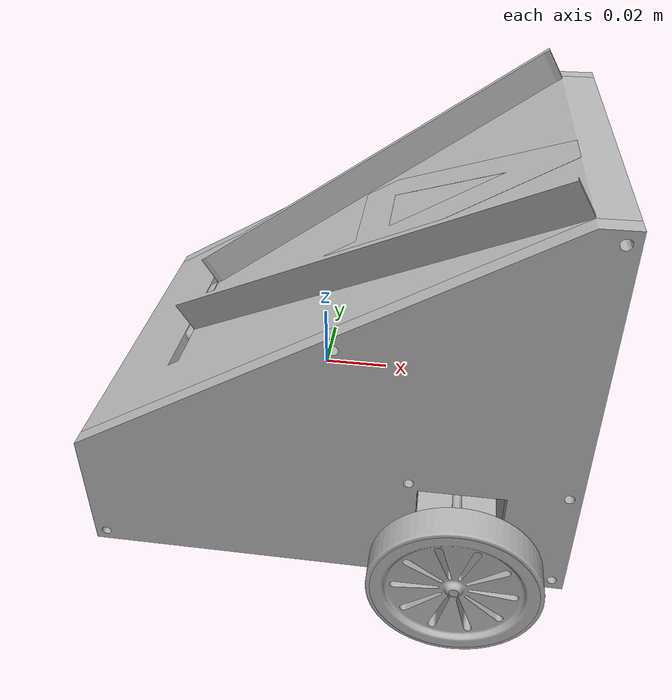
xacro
<?xml version="1.0" ?>
<robot name="grid_bot_4" xmlns:xacro="http://www.ros.org/wiki/xacro">

<xacro:include filename="$(find grid_bot_4_description)/urdf/materials.xacro" />
<xacro:include filename="$(find grid_bot_4_description)/urdf/grid_bot_4.trans" />
<xacro:include filename="$(find grid_bot_4_description)/urdf/grid_bot_4.gazebo" />
<link name="base_link">
  <visual>
    <origin rpy="0 0 0" xyz="0 0 0"/>
    <geometry>
      <mesh filename="package://grid_bot_4_description/meshes/base_link.stl" scale="0.001 0.001 0.001"/>
    </geometry>
    <material name="silver"/>
  </visual>
  <collision>
    <origin rpy="0 0 0" xyz="0 0 0"/>
    <geometry>
      <mesh filename="package://grid_bot_4_description/meshes/base_link.stl" scale="0.001 0.001 0.001"/>
    </geometry>
  </collision>
</link>

<link name="servo_motor_1">
  <inertial>
    <origin rpy="0 0 0" xyz="0.010587734438734408 0.0084001186327211 0.006274355737184533"/>
    <mass value="0.05328666830943237"/>
    <inertia ixx="4e-06" ixy="-0.0" ixz="-1e-06" iyy="3e-06" iyz="-0.0" izz="5e-06"/>
  </inertial>
  <visual>
    <origin rpy="0 0 0" xyz="0.031681 -0.002315 -0.005433"/>
    <geometry>
      <mesh filename="package://grid_bot_4_description/meshes/servo_motor_1.stl" scale="0.001 0.001 0.001"/>
    </geometry>
    <material name="silver"/>
  </visual>
  <collision>
    <origin rpy="0 0 0" xyz="0.031681 -0.002315 -0.005433"/>
    <geometry>
      <mesh filename="package://grid_bot_4_description/meshes/servo_motor_1.stl" scale="0.001 0.001 0.001"/>
    </geometry>
  </collision>
</link>

<link name="servo_actuator_1">
  <inertial>
    <origin rpy="0 0 0" xyz="0.004722447291877686 4.322909012404591e-07 -0.005026760619318825"/>
    <mass value="0.034970185716492505"/>
    <inertia ixx="7e-06" ixy="0.0" ixz="2e-06" iyy="5e-06" iyz="0.0" izz="5e-06"/>
  </inertial>
  <visual>
    <origin rpy="0 0 0" xyz="0.035552 -0.002315 -0.003139"/>
    <geometry>
      <mesh filename="package://grid_bot_4_description/meshes/servo_actuator_1.stl" scale="0.001 0.001 0.001"/>
    </geometry>
    <material name="silver"/>
  </visual>
  <collision>
    <origin rpy="0 0 0" xyz="0.035552 -0.002315 -0.003139"/>
    <geometry>
      <mesh filename="package://grid_bot_4_description/meshes/servo_actuator_1.stl" scale="0.001 0.001 0.001"/>
    </geometry>
  </collision>
</link>

<link name="side_pane_2">
  <inertial>
    <origin rpy="0 0 0" xyz="-0.05840087932305019 -0.0024995677090986004 -0.07001406727133204"/>
    <mass value="0.441860348592679"/>
    <inertia ixx="0.000382" ixy="0.0" ixz="-0.000236" iyy="0.001103" iyz="-0.0" izz="0.000722"/>
  </inertial>
  <visual>
    <origin rpy="0 0 0" xyz="-0.075503 0.047685 -0.079034"/>
    <geometry>
      <mesh filename="package://grid_bot_4_description/meshes/side_pane_2.stl" scale="0.001 0.001 0.001"/>
    </geometry>
    <material name="silver"/>
  </visual>
  <collision>
    <origin rpy="0 0 0" xyz="-0.075503 0.047685 -0.079034"/>
    <geometry>
      <mesh filename="package://grid_bot_4_description/meshes/side_pane_2.stl" scale="0.001 0.001 0.001"/>
    </geometry>
  </collision>
</link>

<link name="side_pane_1">
  <inertial>
    <origin rpy="0 0 0" xyz="-0.05840087932305031 0.0025004322909012236 -0.07001406727133201"/>
    <mass value="0.441860348592679"/>
    <inertia ixx="0.000382" ixy="0.0" ixz="-0.000236" iyy="0.001103" iyz="-0.0" izz="0.000722"/>
  </inertial>
  <visual>
    <origin rpy="0 0 0" xyz="-0.075503 -0.052315 -0.079034"/>
    <geometry>
      <mesh filename="package://grid_bot_4_description/meshes/side_pane_1.stl" scale="0.001 0.001 0.001"/>
    </geometry>
    <material name="silver"/>
  </visual>
  <collision>
    <origin rpy="0 0 0" xyz="-0.075503 -0.052315 -0.079034"/>
    <geometry>
      <mesh filename="package://grid_bot_4_description/meshes/side_pane_1.stl" scale="0.001 0.001 0.001"/>
    </geometry>
  </collision>
</link>

<link name="connector_rod_1">
  <inertial>
    <origin rpy="0 0 0" xyz="3.890800441760933e-07 -0.06749956770909944 -2.161915329777775e-07"/>
    <mass value="0.007490931332944163"/>
    <inertia ixx="1.1e-05" ixy="-0.0" ixz="0.0" iyy="0.0" iyz="-0.0" izz="1.1e-05"/>
  </inertial>
  <visual>
    <origin rpy="0 0 0" xyz="-0.046539 -0.069315 0.028466"/>
    <geometry>
      <mesh filename="package://grid_bot_4_description/meshes/connector_rod_1.stl" scale="0.001 0.001 0.001"/>
    </geometry>
    <material name="silver"/>
  </visual>
  <collision>
    <origin rpy="0 0 0" xyz="-0.046539 -0.069315 0.028466"/>
    <geometry>
      <mesh filename="package://grid_bot_4_description/meshes/connector_rod_1.stl" scale="0.001 0.001 0.001"/>
    </geometry>
  </collision>
</link>

<link name="left_wheel_1">
  <inertial>
    <origin rpy="0 0 0" xyz="3.8680151746156577e-07 0.0042454206608824735 -2.2070271555110765e-07"/>
    <mass value="0.10624530732840641"/>
    <inertia ixx="2e-05" ixy="-0.0" ixz="-0.0" iyy="3.9e-05" iyz="-0.0" izz="2e-05"/>
  </inertial>
  <visual>
    <origin rpy="0 0 0" xyz="-0.046539 0.065685 0.028466"/>
    <geometry>
      <mesh filename="package://grid_bot_4_description/meshes/left_wheel_1.stl" scale="0.001 0.001 0.001"/>
    </geometry>
    <material name="silver"/>
  </visual>
  <collision>
    <origin rpy="0 0 0" xyz="-0.046539 0.065685 0.028466"/>
    <geometry>
      <mesh filename="package://grid_bot_4_description/meshes/left_wheel_1.stl" scale="0.001 0.001 0.001"/>
    </geometry>
  </collision>
</link>

<link name="right_wheel_1">
  <inertial>
    <origin rpy="0 0 0" xyz="3.8680151760034365e-07 -0.004244554213330684 -2.2070271556498544e-07"/>
    <mass value="0.10624530732840641"/>
    <inertia ixx="2e-05" ixy="-0.0" ixz="-0.0" iyy="3.9e-05" iyz="-0.0" izz="2e-05"/>
  </inertial>
  <visual>
    <origin rpy="0 0 0" xyz="-0.046539 -0.069315 0.028466"/>
    <geometry>
      <mesh filename="package://grid_bot_4_description/meshes/right_wheel_1.stl" scale="0.001 0.001 0.001"/>
    </geometry>
    <material name="silver"/>
  </visual>
  <collision>
    <origin rpy="0 0 0" xyz="-0.046539 -0.069315 0.028466"/>
    <geometry>
      <mesh filename="package://grid_bot_4_description/meshes/right_wheel_1.stl" scale="0.001 0.001 0.001"/>
    </geometry>
  </collision>
</link>

<link name="castor_wheel_1">
  <inertial>
    <origin rpy="0 0 0" xyz="-4.60694217933183e-06 1.876423122246793e-05 -0.007087258397097118"/>
    <mass value="0.036526757425163855"/>
    <inertia ixx="5e-06" ixy="-0.0" ixz="-0.0" iyy="4e-06" iyz="0.0" izz="5e-06"/>
  </inertial>
  <visual>
    <origin rpy="0 0 0" xyz="0.040997 -0.002315 0.031466"/>
    <geometry>
      <mesh filename="package://grid_bot_4_description/meshes/castor_wheel_1.stl" scale="0.001 0.001 0.001"/>
    </geometry>
    <material name="silver"/>
  </visual>
  <collision>
    <origin rpy="0 0 0" xyz="0.040997 -0.002315 0.031466"/>
    <geometry>
      <mesh filename="package://grid_bot_4_description/meshes/castor_wheel_1.stl" scale="0.001 0.001 0.001"/>
    </geometry>
  </collision>
</link>

<link name="left_wheel_tyre_1">
  <inertial>
    <origin rpy="0 0 0" xyz="3.890801221415052e-07 0.005000419728007896 -2.1619153321023044e-07"/>
    <mass value="0.003489570869816107"/>
    <inertia ixx="1e-06" ixy="0.0" ixz="-0.0" iyy="2e-06" iyz="0.0" izz="1e-06"/>
  </inertial>
  <visual>
    <origin rpy="0 0 0" xyz="-0.046539 0.06644 0.028466"/>
    <geometry>
      <mesh filename="package://grid_bot_4_description/meshes/left_wheel_tyre_1.stl" scale="0.001 0.001 0.001"/>
    </geometry>
    <material name="silver"/>
  </visual>
  <collision>
    <origin rpy="0 0 0" xyz="-0.046539 0.06644 0.028466"/>
    <geometry>
      <mesh filename="package://grid_bot_4_description/meshes/left_wheel_tyre_1.stl" scale="0.001 0.001 0.001"/>
    </geometry>
  </collision>
</link>

<link name="right_wheel_tyre_1">
  <inertial>
    <origin rpy="0 0 0" xyz="3.890801222733442e-07 -0.004999555146205259 -2.1619153322410822e-07"/>
    <mass value="0.003489570869816107"/>
    <inertia ixx="1e-06" ixy="-0.0" ixz="-0.0" iyy="2e-06" iyz="0.0" izz="1e-06"/>
  </inertial>
  <visual>
    <origin rpy="0 0 0" xyz="-0.046539 -0.07007 0.028466"/>
    <geometry>
      <mesh filename="package://grid_bot_4_description/meshes/right_wheel_tyre_1.stl" scale="0.001 0.001 0.001"/>
    </geometry>
    <material name="silver"/>
  </visual>
  <collision>
    <origin rpy="0 0 0" xyz="-0.046539 -0.07007 0.028466"/>
    <geometry>
      <mesh filename="package://grid_bot_4_description/meshes/right_wheel_tyre_1.stl" scale="0.001 0.001 0.001"/>
    </geometry>
  </collision>
</link>

<link name="identifier_1">
  <inertial>
    <origin rpy="0 0 0" xyz="0.008638689836251174 -0.008427073088677229 0.005148190881470727"/>
    <mass value="0.0008428028339154157"/>
    <inertia ixx="0.0" ixy="0.0" ixz="-0.0" iyy="0.0" iyz="0.0" izz="0.0"/>
  </inertial>
  <visual>
    <origin rpy="0 0 0" xyz="-0.019536 -0.008442 -0.05322"/>
    <geometry>
      <mesh filename="package://grid_bot_4_description/meshes/identifier_1.stl" scale="0.001 0.001 0.001"/>
    </geometry>
    <material name="silver"/>
  </visual>
  <collision>
    <origin rpy="0 0 0" xyz="-0.019536 -0.008442 -0.05322"/>
    <geometry>
      <mesh filename="package://grid_bot_4_description/meshes/identifier_1.stl" scale="0.001 0.001 0.001"/>
    </geometry>
  </collision>
</link>

<joint name="servo_fix" type="fixed">
  <origin rpy="0 0 0" xyz="-0.031681 0.002315 0.005433"/>
  <parent link="base_link"/>
  <child link="servo_motor_1"/>
</joint>

<joint name="servo_joint" type="revolute">
  <origin rpy="0 0 0" xyz="-0.003871 0.0 -0.002294"/>
  <parent link="servo_motor_1"/>
  <child link="servo_actuator_1"/>
  <axis xyz="0.860292 0.0 0.509802"/>
  <limit effort="100" lower="0.0" upper="3.141593" velocity="100"/>
</joint>

<joint name="left_pane_fix" type="fixed">
  <origin rpy="0 0 0" xyz="0.075503 -0.047685 0.079034"/>
  <parent link="base_link"/>
  <child link="side_pane_2"/>
</joint>

<joint name="right_pane_fix" type="fixed">
  <origin rpy="0 0 0" xyz="0.075503 0.052315 0.079034"/>
  <parent link="base_link"/>
  <child link="side_pane_1"/>
</joint>

<joint name="connector_fix" type="fixed">
  <origin rpy="0 0 0" xyz="0.046539 0.069315 -0.028466"/>
  <parent link="base_link"/>
  <child link="connector_rod_1"/>
</joint>

<joint name="left_wheel_joint" type="continuous">
  <origin rpy="0 0 0" xyz="0.0 -0.135 0.0"/>
  <parent link="connector_rod_1"/>
  <child link="left_wheel_1"/>
  <axis xyz="-0.0 -1.0 -0.0"/>
</joint>

<joint name="right_wheel_joint" type="continuous">
  <origin rpy="0 0 0" xyz="0.0 0.0 0.0"/>
  <parent link="connector_rod_1"/>
  <child link="right_wheel_1"/>
  <axis xyz="0.0 -1.0 0.0"/>
</joint>

<joint name="castor_joint" type="fixed">
  <origin rpy="0 0 0" xyz="-0.040997 0.002315 -0.031466"/>
  <parent link="base_link"/>
  <child link="castor_wheel_1"/>
</joint>

<joint name="left_tyre_fix" type="fixed">
  <origin rpy="0 0 0" xyz="0.0 -0.000755 0.0"/>
  <parent link="left_wheel_1"/>
  <child link="left_wheel_tyre_1"/>
</joint>

<joint name="right_tyre_fix" type="fixed">
  <origin rpy="0 0 0" xyz="0.0 0.000755 0.0"/>
  <parent link="right_wheel_1"/>
  <child link="right_wheel_tyre_1"/>
</joint>

<joint name="identifier_fix" type="fixed">
  <origin rpy="0 0 0" xyz="0.019536 0.008442 0.05322"/>
  <parent link="base_link"/>
  <child link="identifier_1"/>
</joint>

</robot>

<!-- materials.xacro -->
<robot name="grid_bot_4" xmlns:xacro="http://www.ros.org/wiki/xacro" >

<material name="silver">
  <color rgba="0.700 0.700 0.700 1.000"/>
</material>

</robot>

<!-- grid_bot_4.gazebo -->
<robot name="grid_bot_4" xmlns:xacro="http://www.ros.org/wiki/xacro" >

<xacro:property name="body_color" value="Gazebo/Red" />
<xacro:property name="side_color" value="Gazebo/Green" />
<xacro:property name="link_color" value="Gazebo/Blue" />
<xacro:property name="tire_color" value="Gazebo/Black" />
<xacro:property name="rim_color" value="Gazebo/Yellow" />

<gazebo>
  <plugin filename="libgazebo_ros_control.so" name="control"/>
</gazebo>
<gazebo>
  <plugin name="differential_drive_controller" filename="libgazebo_ros_diff_drive.so">

    <!-- Plugin update rate in Hz -->
    <updateRate>10</updateRate>

    <!-- Name of left joint, defaults to `left_joint` -->
    <leftJoint>left_wheel_joint</leftJoint>

    <!-- Name of right joint, defaults to `right_joint` -->
    <rightJoint>right_wheel_joint</rightJoint>

    <!-- Wheel acceleration, in rad/s^2, defaults to 0.0 rad/s^2 -->
    <wheelAcceleration>1.0</wheelAcceleration>

    <!-- Maximum torque which the wheels can produce, in Nm, defaults to 5 Nm -->
    <wheelTorque>20</wheelTorque>

    <!-- Topic to receive geometry_msgs/Twist message commands, defaults to `cmd_vel` -->
    <commandTopic>cmd_vel</commandTopic>

    <!-- Topic to publish nav_msgs/Odometry messages, defaults to `odom` -->
    <odometryTopic>odom</odometryTopic>

    <!-- Odometry frame, defaults to `odom` -->
    <odometryFrame>odom</odometryFrame>

    <!-- Robot frame to calculate odometry from, defaults to `base_footprint` -->
    <robotBaseFrame>base_link</robotBaseFrame>

    <!-- Odometry source, 0 for ENCODER, 1 for WORLD, defaults to WORLD -->
    <odometrySource>1</odometrySource>

    <!-- Set to true to publish transforms for the wheel links, defaults to false -->
    <publishWheelTF>true</publishWheelTF>

    <!-- Set to true to publish transforms for the odometry, defaults to true -->
    <publishOdom>true</publishOdom>

    <!-- Set to true to publish sensor_msgs/JointState on /joint_states for the wheel joints, defaults to false -->
    <publishWheelJointState>true</publishWheelJointState>

    <!-- Set to true to swap right and left wheels, defaults to true -->
    <legacyMode>false</legacyMode>
  </plugin>
</gazebo>

<gazebo reference="base_link">
  <material>${body_color}</material>
  <mu1>0.2</mu1>
  <mu2>0.2</mu2>
  <selfCollide>true</selfCollide>
  <gravity>true</gravity>
</gazebo>

<gazebo reference="servo_motor_1">
  <material>${rim_color}</material>
  <mu1>0.2</mu1>
  <mu2>0.2</mu2>
  <selfCollide>true</selfCollide>
</gazebo>

<gazebo reference="servo_actuator_1">
  <material>${link_color}</material>
  <mu1>0.2</mu1>
  <mu2>0.2</mu2>
  <selfCollide>true</selfCollide>
</gazebo>

<gazebo reference="side_pane_2">
  <material>${side_color}</material>
  <mu1>0.2</mu1>
  <mu2>0.2</mu2>
  <selfCollide>true</selfCollide>
</gazebo>

<gazebo reference="side_pane_1">
  <material>${side_color}</material>
  <mu1>0.2</mu1>
  <mu2>0.2</mu2>
  <selfCollide>true</selfCollide>
</gazebo>

<gazebo reference="connector_rod_1">
  <material>${link_color}</material>
  <mu1>0.2</mu1>
  <mu2>0.2</mu2>
  <selfCollide>true</selfCollide>
</gazebo>

<gazebo reference="left_wheel_1">
  <material>${rim_color}</material>
  <mu1>0.2</mu1>
  <mu2>0.2</mu2>
  <selfCollide>true</selfCollide>
</gazebo>

<gazebo reference="right_wheel_1">
  <material>${rim_color}</material>
  <mu1>0.2</mu1>
  <mu2>0.2</mu2>
  <selfCollide>true</selfCollide>
</gazebo>

<gazebo reference="castor_wheel_1">
  <material>${rim_color}</material>
  <mu1>0.2</mu1>
  <mu2>0.2</mu2>
  <selfCollide>true</selfCollide>
</gazebo>

<gazebo reference="identifier_1">
  <material>${rim_color}</material>
  <mu1>0.2</mu1>
  <mu2>0.2</mu2>
  <selfCollide>true</selfCollide>
</gazebo>

<gazebo reference="left_wheel_tyre_1">
  <material>${tire_color}</material>
  <mu1>0.2</mu1>
  <mu2>0.2</mu2>
  <selfCollide>true</selfCollide>
</gazebo>

<gazebo reference="right_wheel_tyre_1">
  <material>${tire_color}</material>
  <mu1>0.2</mu1>
  <mu2>0.2</mu2>
  <selfCollide>true</selfCollide>
</gazebo>

</robot>
